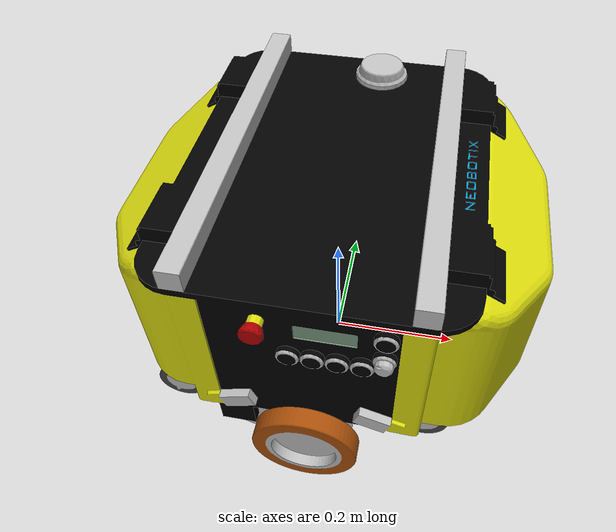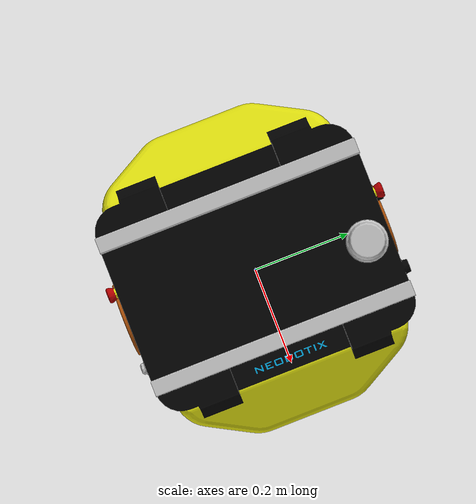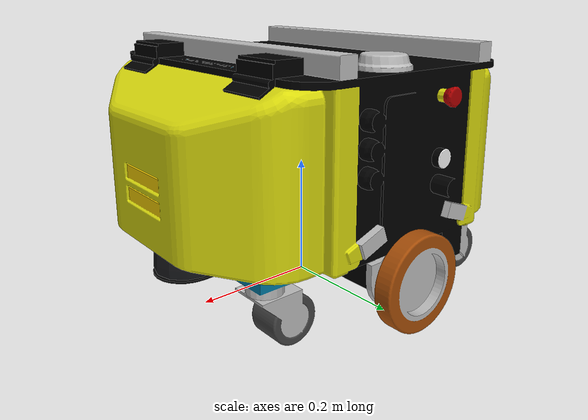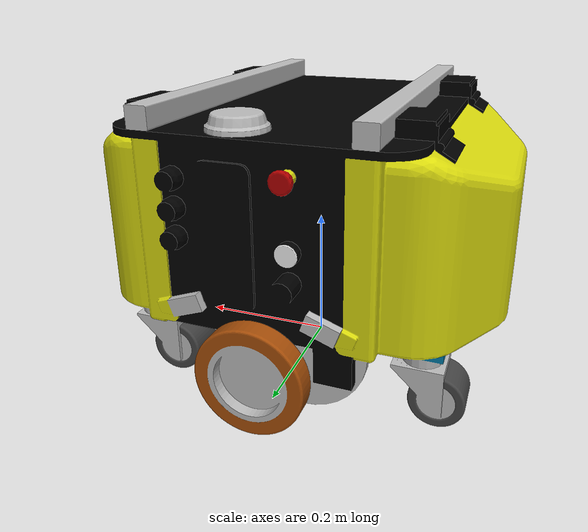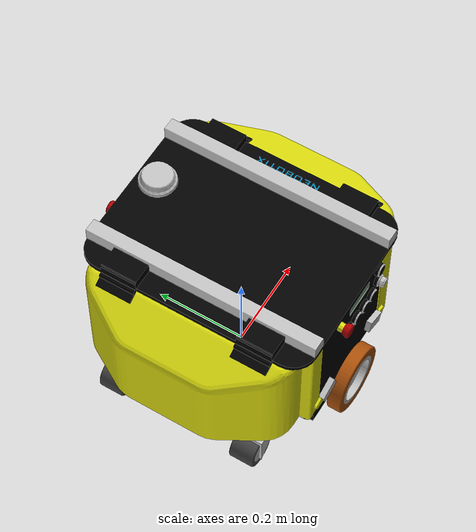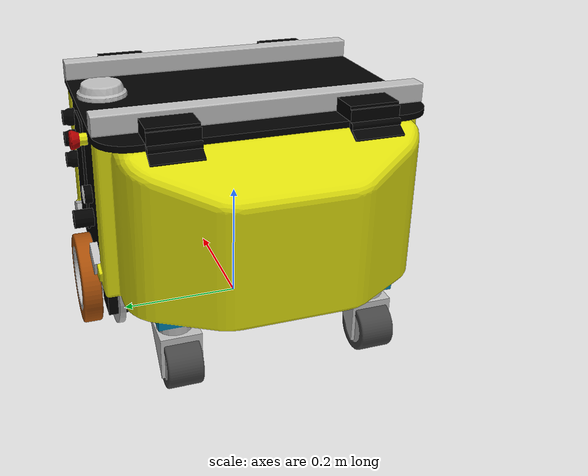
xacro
<?xml version="1.0"?>
<!-- Materials -->
<robot xmlns:xacro="http://www.ros.org/wiki/xacro" name="mp_400">

<xacro:include filename="$(find neo_simulation)/robots/mp_400/xacros/mp_400_gazebo.xacro" />

<!--++++++++++++++++++++++++++++++base_link++++++++++++++++++++++++++++++++++++++++++++++++++++-->
<!--++++++++++++++++++++body++++++++++++++++++++++++++++-->

<xacro:include filename="$(find neo_simulation)/robots/mp_400/xacros/mp_400_body.xacro" />

<!--+++++++++++++++++++castor_wheel_link++++++++++++++++++++++++-->
<xacro:include filename="$(find neo_simulation)/robots/mp_400/xacros/mp_400_caster_wheel.xacro" />

<!--+++++++++++++++++++left_wheel_link++++++++++++++++++++++++-->
<xacro:include filename="$(find neo_simulation)/robots/mp_400/xacros/mp_400_fixed_wheel_left.xacro" />

<!--+++++++++++++++++++right_wheel_link++++++++++++++++++++++++-->
<xacro:include filename="$(find neo_simulation)/robots/mp_400/xacros/mp_400_fixed_wheel_right.xacro" />

<!-- SENSORS -->
  <!-- Sick-S300 -->

  <!--Sick Micro-scan  -->
  <xacro:include filename="$(find neo_simulation)/robots/mp_400/xacros/micro_scan.xacro" />

  <!--Ultrasonics, cameras and IMU's  -->

<!-- Base link macro -->
  <xacro:mp_400_base name="base_link">
  </xacro:mp_400_base>

  <!-- Wheel Macro -->
  <xacro:caster_wheel name="mp_400_caster_wheel_front_left" parent="base_link">
    <origin xyz="0.165 0.155 0.036" rpy="0 0 1.57" />
  </xacro:caster_wheel>

  <xacro:caster_wheel name="mp_400_caster_wheel_back_left" parent="base_link">
    <origin xyz="-0.220 0.155 0.036" rpy="0 0 1.57" />
  </xacro:caster_wheel>

  <xacro:caster_wheel name="mp_400_caster_wheel_front_right" parent="base_link">
    <origin xyz="0.165 -0.155 0.036" rpy="0 0 1.57" />
  </xacro:caster_wheel>

   <xacro:caster_wheel name="mp_400_caster_wheel_back_right" parent="base_link">
    <origin xyz="-0.220 -0.155 0.036" rpy="0 0 1.57" />
  </xacro:caster_wheel>

  <xacro:fixed_wheel_right name="mp_400_fixed_wheel_right" parent="base_link">
    <origin xyz="0. -0.26 0.074" rpy="0 0 1.57" />
  </xacro:fixed_wheel_right>

  <xacro:fixed_wheel_left name="mp_400_fixed_wheel_left" parent="base_link">
    <origin xyz="-0. 0.26 0.074" rpy="0 0 1.57" />
  </xacro:fixed_wheel_left>

  <!--+++++++++++++++++++laserscanner_link++++++++++++++++++++++++-->

  <xacro:sick_laser_v0 name="laser_1" parent="base_link" ros_topic="lidar_1/scan_filtered">
    <origin xyz="0.230 0 0.110" rpy="0 3.14 3.14" />
  </xacro:sick_laser_v0>

  <!--+++++++++++++++++++ IMU ++++++++++++++++++++++++-->
  <!-- Comment or uncomment based on your requirement -->

  <!--+++++++++++++++++++ Ultra Sonic ++++++++++++++++++++++++-->
  <!-- Comment or uncomment based on your requirement -->
  <!-- SENSOR 1 -->
  <!-- SENSOR 2 -->
  <!-- SENSOR 3 -->
  <!-- SENSOR 4 -->
  <!-- SENSOR 5 -->
  <!-- SENSOR 6 -->
  <!-- SENSOR 7 -->
  <!-- SENSOR 8 -->
  <!-- SENSOR 9 -->
  <!-- SENSOR 10 -->
  <!-- SENSOR 11 -->
  <!-- SENSOR 12 -->
  <!-- SENSOR 13 -->
  <!-- SENSOR 14 -->
  <!-- SENSOR 15 -->
  <!-- SENSOR 16 -->

    <!--Camera  -->
</robot>

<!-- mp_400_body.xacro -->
<robot xmlns:xacro="http://www.ros.org/wiki/xacro" name="mp_400">

  <xacro:macro name="mp_400_base" params="name">
    <link name="${name}">
  <inertial>
        <mass value="30" />
        <origin xyz="0 0 0" rpy="0 0 0"/>
        <inertia ixx="1.71402" ixy="0.0" ixz="0.0"
                 iyy="0.8856" iyz="0.0"
                 izz="2.5725" />
</inertial>
      <visual name='body'>
      <origin xyz="0.0 0.0 0." rpy="0 0 1.57" />
        <geometry>
            <mesh filename="package://neo_simulation/robots/mp_400/meshes/MP-400-BODY.dae" scale="0.001 0.001 0.001"/>
        <!--cylinder length="0.381" radius="0.2545"/-->
        <!--box size="0.445 0.277 0.17"/-->
        </geometry>
      </visual>
      <collision name='body_collision'>
        <origin xyz="0.0 0.0 0.0" rpy="0 0 1.57" />
        <geometry>
          <mesh filename="package://neo_simulation/robots/mp_400/meshes/MP-400-BODY.dae" scale="0.001 0.001 0.001"/>
          <!--cylinder length="0.381" radius="0.2545"/-->
        </geometry>
      </collision>

    </link>
  <gazebo reference="${name}">
    <kp>10000.0</kp>
    <kd>10.0</kd>
    <mu1>1.5</mu1>
    <mu2>1.5</mu2>
    <fdir1>.1 0 0</fdir1>
    <maxVel>10.0</maxVel>
    <minDepth>0.0005</minDepth>
</gazebo>
  </xacro:macro>

</robot>

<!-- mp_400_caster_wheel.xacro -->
<robot xmlns:xacro="http://www.ros.org/wiki/xacro" name="mp_400">

  <xacro:macro name="caster_wheel" params="name parent *origin">
   <joint name="${name}_joint" type="fixed">
    <insert_block name="origin" />
    <axis xyz="-1 0 0" />
    <joint_properties damping="1." friction="1.0" />
    <limit effort="1000.0" lower="-1e+16" upper="1e+16" velocity="3.5"/>
    <parent link="${parent}" />
    <child link="${name}_link" />
   </joint>

   <link name="${name}_link" type="wheel">
   <inertial>
        <mass value="1.4"/>
        <inertia ixx="0.00499743171" ixy="0.00000004464" ixz="-0.00000002245"
                 iyy="0.00499741733" iyz="-0.00000000164"
                 izz="0.00839239692"/>
</inertial>

      <visual name='caster_wheel'>
    <origin xyz="0 0 0" rpy="0 0 0" />
    <geometry>
            <mesh filename="package://neo_simulation/robots/mp_400/meshes/MP-400-CASTER-WHEEL.dae" scale="0.001 0.001 0.001"/>
    </geometry>
    </visual>

    <collision>
      <origin xyz="0 0. 0" rpy="0 0 0" />
      <geometry>
          <sphere radius="0.038"/>

      </geometry>
    </collision>
    </link>

<gazebo reference="${name}_link">
      <kp>10000.0</kp>
      <kd>10.0</kd>
      <mu1>0.5</mu1>
      <mu2>0.2</mu2>
      <fdir1>.5 0 0</fdir1>
      <maxVel>3.0</maxVel>
      <minDepth>0.00</minDepth>
      <implicitSpringDamper>3</implicitSpringDamper>
</gazebo>

  </xacro:macro>

</robot>

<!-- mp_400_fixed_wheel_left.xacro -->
<robot xmlns:xacro="http://www.ros.org/wiki/xacro" name="mp_400">

  <xacro:macro name="fixed_wheel_left" params="name parent *origin">
   <joint name="${name}_joint" type="revolute">
    <insert_block name="origin" />
    <axis xyz="1 0 0" />
    <limit effort="1000.0" lower="-1e+16" upper="1e+16" velocity="3.5"/>
    <joint_properties damping="1.0" friction="1" />
    <parent link="${parent}" />
    <child link="${name}_link" />
   </joint>

   <link name="${name}_link" type="wheel">
   <inertial>
        <mass value="1.8"/>
        <inertia ixx="0.00399743171" ixy="0.0" ixz="-0.0"
                 iyy="0.00399741733" iyz="-0.0"
                 izz="0.00739239692"/>
    </inertial>

      <visual name='fixed_wheel_left'>
    <origin xyz="0 0 0.0" rpy="0 0 0" />
        <geometry>
            <mesh filename="package://neo_simulation/robots/mp_400/meshes/MP-400-FIXED-WHEEL-LEFT.dae" scale="0.001 0.001 0.001"/>
        </geometry>
      </visual>

    <collision>
     <origin xyz="0. 0 0" rpy=" 0 0 0" />
      <geometry>
        <sphere radius="0.079"/>
      </geometry>
    </collision>
</link>

<gazebo reference="${name}_link">
      <kp>100000.0</kp>
      <kd>50.0</kd>
      <mu1>100</mu1>
      <mu2>100</mu2>
      <minDepth>0.00</minDepth>
      <implicitSpringDamper>1</implicitSpringDamper>
</gazebo>
  </xacro:macro>

</robot>

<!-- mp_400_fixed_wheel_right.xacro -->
<robot xmlns:xacro="http://www.ros.org/wiki/xacro" name="mp_400">

  <xacro:macro name="fixed_wheel_right" params="name parent *origin">
   <joint name="${name}_joint" type="revolute">
    <insert_block name="origin" />
    <axis xyz="1 0 0" />
    <limit effort="1000.0" lower="-1e+16" upper="1e+16" velocity="3.5"/>
    <joint_properties damping="1.0" friction="1" />
    <parent link="${parent}" />
    <child link="${name}_link" />
   </joint>

   <link name="${name}_link" type="wheel">
  <inertial>
        <mass value="1.8"/>
        <inertia ixx="0.00399743171" ixy="0.0" ixz="-0.0"
                 iyy="0.00399741733" iyz="-0.0"
                 izz="0.00739239692"/>
  </inertial>

      <visual name='fixed_wheel_right'>
    <origin xyz="0 0 0.0" rpy="0 0 3.14" />
        <geometry>
            <mesh filename="package://neo_simulation/robots/mp_400/meshes/MP-400-FIXED-WHEEL-RIGHT.dae" scale="0.001 0.001 0.001"/>
        </geometry>
      </visual>

  <collision>
     <origin xyz="0. 0 0" rpy=" 0 0 0" />
      <geometry>
        <sphere radius="0.079"/>
      </geometry>
  </collision>
</link>

<gazebo reference="${name}_link">
      <kp>100000.0</kp>
      <kd>50.0</kd>
      <mu1>100</mu1>
      <mu2>100</mu2>
      <minDepth>0.00</minDepth>
      <implicitSpringDamper>1</implicitSpringDamper>
</gazebo>
  </xacro:macro>

</robot>

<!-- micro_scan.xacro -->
<robot xmlns:xacro="http://www.ros.org/wiki/xacro" name="mp_400">
  <xacro:macro name="sick_laser_v0" params="name parent *origin ros_topic">
    <joint name="${name}_joint" type="fixed">
      <axis xyz="0 1 0" />
      <insert_block name="origin" />
      <parent link="${parent}"/>
      <child link="${name}_link"/>
    </joint>
    <link name="${name}_link" type="laser">
      <inertial>
        <mass value="0.001" />
        <origin xyz="0 0 0" rpy="0 0 0" />
        <inertia ixx="0.0001" ixy="0" ixz="0" iyy="0.000001" iyz="0" izz="0.0001" />
      </inertial>
      <visual>
        <origin xyz="-0.0 0 -0.06" rpy="1.57 0 0" />
        <geometry>
        <mesh filename="package://neo_simulation/robots/mp_400/meshes/SICK-MICROSCAN3.dae" scale="0.001 0.001 0.001" />
        </geometry>
      </visual>
      <collision>
        <origin xyz="-0.0 0 -0.06" rpy="1.57 0 0" />
        <geometry>
        <mesh filename="package://neo_simulation/robots/mp_400/meshes/SICK-MICROSCAN3.dae" scale="0.001 0.001 0.001" />
        </geometry>
      </collision>
    </link>
  </xacro:macro>

</robot>
